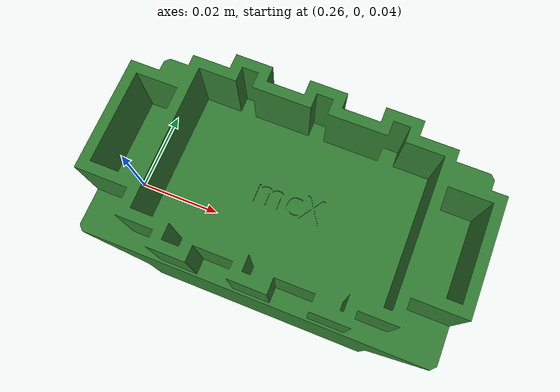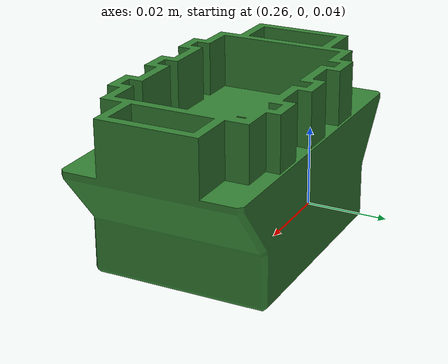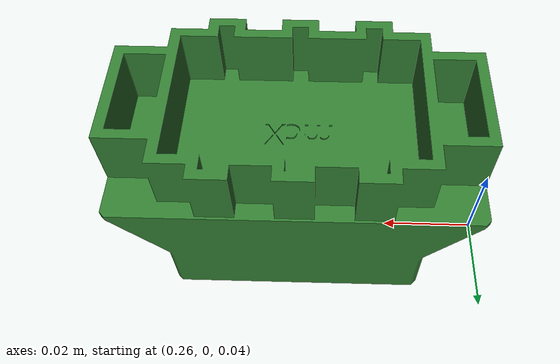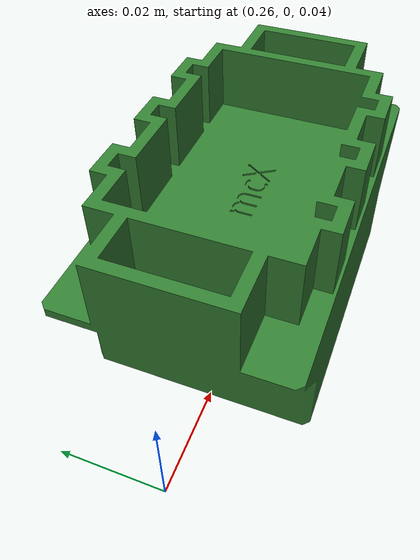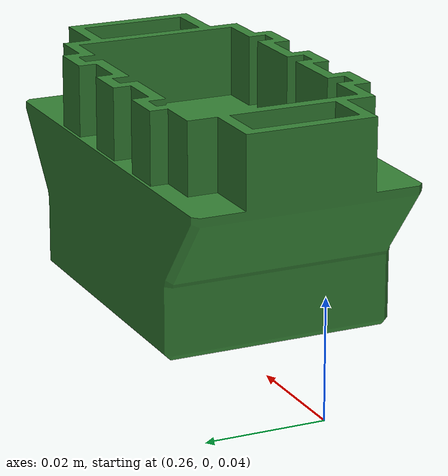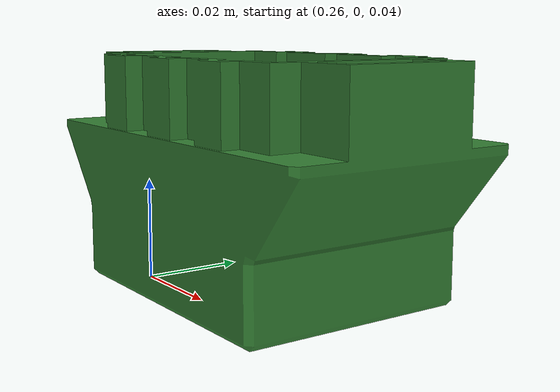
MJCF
<mujoco model="connector_f">
  <default>
    <default class="connector_f.visual">
      <geom type="mesh" group="1" mass="0.039" rgba="1 0 0 1"/>
    </default>
    <default class="connector_f.collision">
      <geom type="mesh" group="3" friction="0.5 5e-3 5e-4" mass="0" solref="0.004 1"/>
    </default>
  </default>
  <asset>
    <mesh name="connector_f" file="../common_assets/connector/mcX_f.stl"/>
    <mesh name="connector_f_MESH" file="../common_assets/connector/mcX_f_collision_mcX_f_MESH.stl" />
  </asset>
  <worldbody>
    <body name="connector_f" pos="0.3 0 0.06">
      <freejoint name="connector_f"/>
      <geom name="connector_f" group="1" type="mesh" contype="0" conaffinity="0" rgba="0.2 0.5 0.2 1" mesh="connector_f" />
      <geom name="connector_f_BOX" type="box" class="connector_f.collision" size="0.0039999475702643394 0.00099998479709029198 0.0059999218210577965" pos="-0.028999632224440575 -0.0099998908117413521 0.019729591906070709" />
      <geom name="connector_f_grip" type="box" class="connector_f.collision" size="0.024999674409627914 0.019499750807881355 0.0065" pos="0 0 -.0065" />
      <site name="connector_f_grip" pos="0 0 -.0065" group="5" xyaxes="0 0 -1 0 1 0"/>
      <geom name="connector_f_BOX.003" type="box" class="connector_f.collision" size="0.034999549388885498 0.019499750807881355 0.00074998725904151797" pos="-9.6042640507221222e-09 -1.3572362789204817e-08 0.012979676946997643" />
      <geom name="connector_f_BOX.004" type="box" class="connector_f.collision" size="0.00099998863879591227 0.015999795868992805 0.0059999218210577965" pos="-0.023999698460102081 -1.5169081990507038e-08 0.019729588180780411" />
      <geom name="connector_f_BOX.005" type="box" class="connector_f.collision" size="0.00099998863879591227 0.015999795868992805 0.0059999218210577965" pos="0.023999679833650589 -1.8894372288968952e-08 0.019729591906070709" />
      <geom name="connector_f_BOX.006" type="box" class="connector_f.collision" size="0.0045713908039033413 0.00099998479709029198 0.0059999218210577965" pos="0.020428277552127838 -0.014999823644757271 0.019729591906070709" />
      <geom name="connector_f_BOX.007" type="box" class="connector_f.collision" size="0.0045713908039033413 0.00099998479709029198 0.0059999218210577965" pos="0.020428277552127838 0.014999790117144585 0.019729591906070709" />
      <geom name="connector_f_BOX.008" type="box" class="connector_f.collision" size="0.0045713908039033413 0.00099998479709029198 0.0059999218210577965" pos="-0.02042829617857933 0.014999790117144585 0.019729591906070709" />
      <geom name="connector_f_BOX.009" type="box" class="connector_f.collision" size="0.0045713908039033413 0.00099998479709029198 0.0059999218210577965" pos="-0.02042829617857933 -0.014999827370047569 0.019729591906070709" />
      <geom name="connector_f_BOX.010" type="box" class="connector_f.collision" size="0.0055713639594614506 0.0009999849135056138 0.0059999218210577965" pos="-0.0071427826769649982 -0.014999822713434696 0.019729591906070709" />
      <geom name="connector_f_BOX.011" type="box" class="connector_f.collision" size="0.0055713639594614506 0.00099998479709029198 0.0059999218210577965" pos="0.0071427631191909313 -0.014999822713434696 0.019729591906070709" />
      <geom name="connector_f_BOX.012" type="box" class="connector_f.collision" size="0.0055713639594614506 0.00099998852238059044 0.0059999218210577965" pos="0.0071427631191909313 0.014999788254499435 0.019729591906070709" />
      <geom name="connector_f_BOX.013" type="box" class="connector_f.collision" size="0.0055713639594614506 0.00099998852238059044 0.0059999218210577965" pos="-0.0071427826769649982 0.014999791979789734 0.019729591906070709" />
      <geom name="connector_f_BOX.014" type="box" class="connector_f.collision" size="0.0035713519901037216 0.00099998479709029198 0.0059999218210577965" pos="0.014285504817962646 0.017999753355979919 0.019729591906070709" />
      <geom name="connector_f_BOX.015" type="box" class="connector_f.collision" size="0.0035713519901037216 0.00099998479709029198 0.0059999218210577965" pos="-4.1443854570388794e-08 0.017999753355979919 0.019729591906070709" />
      <geom name="connector_f_BOX.016" type="box" class="connector_f.collision" size="0.0035713519901037216 0.00099998479709029198 0.0059999218210577965" pos="-0.014285527169704437 0.017999753355979919 0.019729591906070709" />
      <geom name="connector_f_BOX.017" type="box" class="connector_f.collision" size="0.0035713519901037216 0.0009999849135056138 0.0059999218210577965" pos="-0.014285527169704437 -0.017999786883592606 0.019729591906070709" />
      <geom name="connector_f_BOX.018" type="box" class="connector_f.collision" size="0.0035713519901037216 0.00099998479709029198 0.0059999218210577965" pos="2.1886080503463745e-08 -0.017999786883592606 0.019729591906070709" />
      <geom name="connector_f_BOX.019" type="box" class="connector_f.collision" size="0.0035713519901037216 0.00099998479709029198 0.0059999218210577965" pos="0.014285508543252945 -0.017999786883592606 0.019729591906070709" />
      <geom name="connector_f_BOX.020" type="box" class="connector_f.collision" size="0.00099998863879591227 0.010999858379364014 0.0059999218210577965" pos="-0.033999573439359665 -1.7164982324402445e-08 0.019729591906070709" />
      <geom name="connector_f_BOX.021" type="box" class="connector_f.collision" size="0.00099998863879591227 0.010999858379364014 0.0059999218210577965" pos="0.033999551087617874 -1.8961145542562008e-08 0.019729591906070709" />
      <geom name="connector_f_BOX.022" type="box" class="connector_f.collision" size="0.0039999475702643394 0.00099998479709029198 0.0059999218210577965" pos="0.028999617323279381 0.0099998507648706436 0.019729591906070709" />
      <geom name="connector_f_BOX.023" type="box" class="connector_f.collision" size="0.0039999475702643394 0.00099998479709029198 0.0059999218210577965" pos="0.028999613597989082 -0.0099998917430639267 0.019729591906070709" />
      <geom name="connector_f_BOX.024" type="box" class="connector_f.collision" size="0.0039999475702643394 0.00099998479709029198 0.0059999218210577965" pos="-0.028999635949730873 0.0099998544901609421 0.019729591906070709" />
      <geom name="connector_f_MESH" type="mesh" mesh="connector_f_MESH" class="connector_f.collision" rgba="0.5 0.20000000000000001 0.5 1" pos="-9.1724974282669791e-09 -1.3572362789204817e-08 0" />
      <site name="connector_f" group="3" type="box" size=".01 .01 .01" pos="0 0 0.018"/>
    </body>
  </worldbody>
</mujoco>
